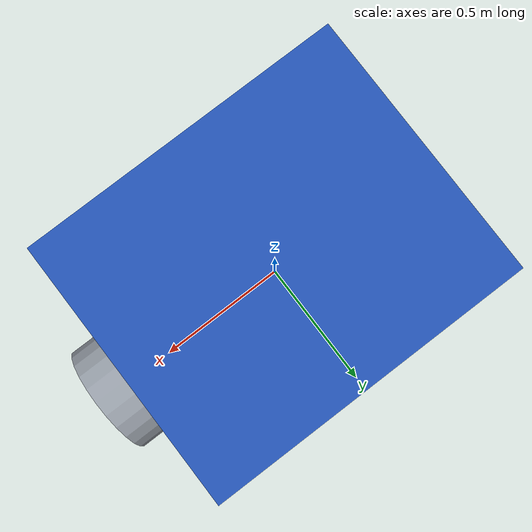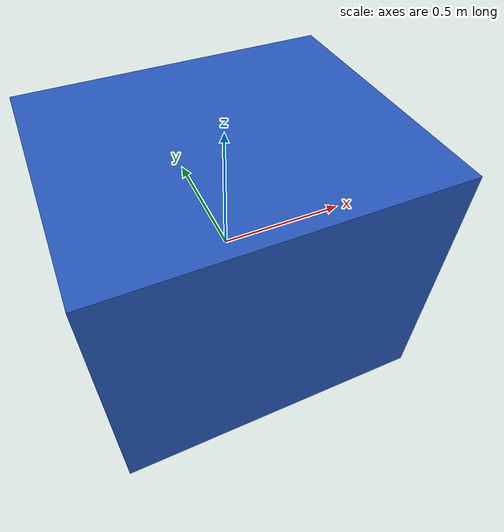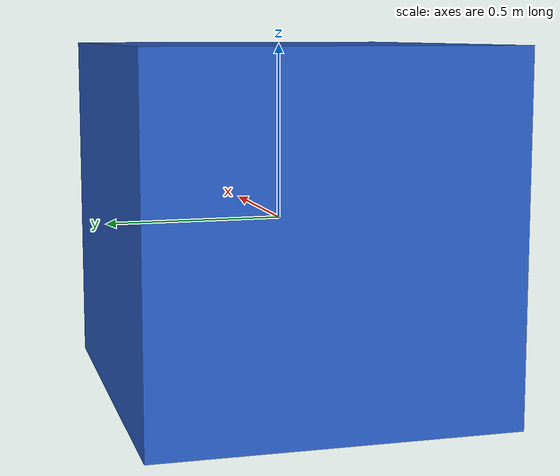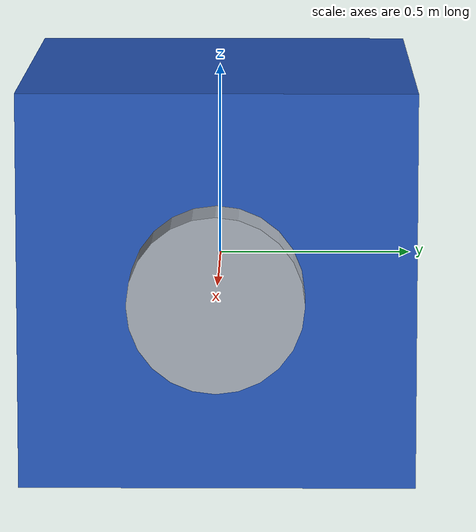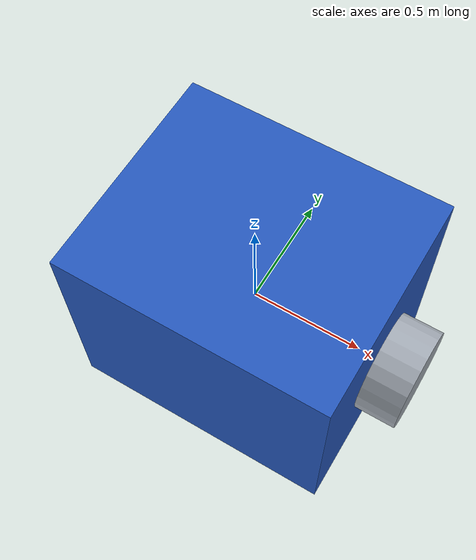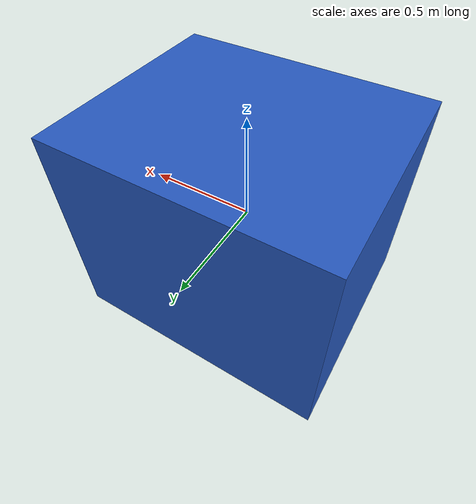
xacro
<?xml version="1.0"?>
<robot xmlns:xacro="http://www.ros.org/wiki/xacro" name="spacecraft">
  <xacro:arg name="name" default="chaser" />
  <xacro:arg name="color" default="0.15 0.35 0.75 1" />

  <link name="base_link">
    <inertial>
      <mass value="250.0" />
      <origin xyz="0 0 0" />
      <inertia ixx="70" ixy="0" ixz="0" iyy="90" iyz="0" izz="90" />
    </inertial>
    <visual>
      <geometry><box size="1.2 1.0 1.0" /></geometry>
      <material name="body"><color rgba="$(arg color)" /></material>
    </visual>
    <collision>
      <geometry><box size="1.2 1.0 1.0" /></geometry>
    </collision>
  </link>

  <link name="docking_port">
    <visual>
      <origin rpy="0 1.57079632679 0" />
      <geometry><cylinder radius="0.22" length="0.18" /></geometry>
      <material name="port"><color rgba="0.65 0.68 0.72 1" /></material>
    </visual>
    <collision>
      <origin rpy="0 1.57079632679 0" />
      <geometry><cylinder radius="0.22" length="0.18" /></geometry>
    </collision>
  </link>

  <joint name="docking_port_joint" type="fixed">
    <parent link="base_link" />
    <child link="docking_port" />
    <origin xyz="0.69 0 0" />
  </joint>
</robot>
